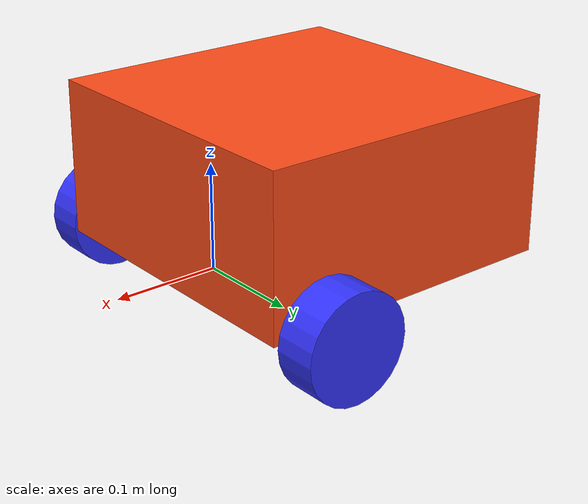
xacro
<?xml version="1.0"?>
<robot xmlns:xacro="http://www.ros.org/wiki/xacro">

    <xacro:include filename="inertial_macros.xacro"/>

    <material name="white">
        <color rgba="1 1 1 1"/>
    </material>

    <material name="orange">
        <color rgba="1 0.3 0.1 1"/>
    </material>

    <material name="blue">
        <color rgba="0.2 0.2 1 1"/>
    </material>

    <material name="black">
        <color rgba="0 0 0 1"/>
    </material>

    <material name="red">
        <color rgba="1 0 0 1"/>
    </material>

    <!-- Base link -->
    <link name="base_link"/>

    <!-- chassis link -->
    <joint name="chassis_joint" type="fixed">
        <parent link="base_link"/>
        <child link="chassis"/>
        <origin xyz="-0.1 0 0"/>
    </joint>

    <link name="chassis">
        <visual>
            <origin xyz="0 0 0.075"/>
            <geometry>
                <box size="0.3 0.3 0.15"/>
            </geometry>
            <material name="orange"/>
        </visual>
        <collision>
            <origin xyz="0 0 0.075"/>
            <geometry>
                <box size="0.3 0.3 0.15"/>
            </geometry>
        </collision>
        <xacro:inertial_box mass="0.5" x="0.3" y="0.3" z="0.15">
            <origin xyz="0 0 0.075" rpy="0 0 0"/>
        </xacro:inertial_box>
    </link>

    <!-- left wheel -->
    <joint name="left_wheel_joint" type="continuous">
        <parent link="base_link"/>
        <child link="left_wheel"/>
        <origin xyz="0 0.175 0" rpy="-${pi/2} 0 0"/>
        <axis xyz="0 0 1"/>
    </joint>

    <link name="left_wheel">
        <visual>
            <geometry>
                <cylinder radius="0.05" length="0.04"/>
            </geometry>
            <material name="blue"/>
        </visual>
        <collision>
            <geometry>
                <cylinder radius="0.05" length="0.04"/>
            </geometry>
        </collision>
        <xacro:inertial_cylinder mass="0.1" length="0.04" radius="0.05">
            <origin xyz="0 0 0" rpy="0 0 0"/>
        </xacro:inertial_cylinder>
    </link>

    <!-- right wheel -->
    <joint name="right_wheel_joint" type="continuous">
        <parent link="base_link"/>
        <child link="right_wheel"/>
        <origin xyz="0 -0.175 0" rpy="${pi/2} 0 0"/>
        <axis xyz="0 0 -1"/>
    </joint>

    <link name="right_wheel">
        <visual>
            <geometry>
                <cylinder radius="0.05" length="0.04"/>
            </geometry>
            <material name="blue"/>
        </visual>
        <collision>
            <geometry>
                <cylinder radius="0.05" length="0.04"/>
            </geometry>
        </collision>
        <xacro:inertial_cylinder mass="0.1" length="0.04" radius="0.05">
            <origin xyz="0 0 0" rpy="0 0 0"/>
        </xacro:inertial_cylinder>
    </link>

    <!-- caster wheel -->
    <joint name="caster_wheel_joint" type="fixed">
        <parent link="chassis"/>
        <child link="caster_wheel"/>
        <origin xyz="-0.08 0 0"/>
    </joint>

    <link name="caster_wheel">
        <visual>
            <geometry>
                <sphere radius="0.05"/>
            </geometry>
            <material name="black"/>
        </visual>
        <collision>
            <geometry>
                <sphere radius="0.05"/>
            </geometry>
        </collision>
        <xacro:inertial_sphere mass="0.1" radius="0.05">
            <origin xyz="0 0 0" rpy="0 0 0"/>
        </xacro:inertial_sphere>
    </link>

    <gazebo reference="caster_wheel">
        <material>Gazebo/black</material>
        <mu1 value="0.001"/>
        <mu2 value="0.001"/>
    </gazebo>

</robot>
